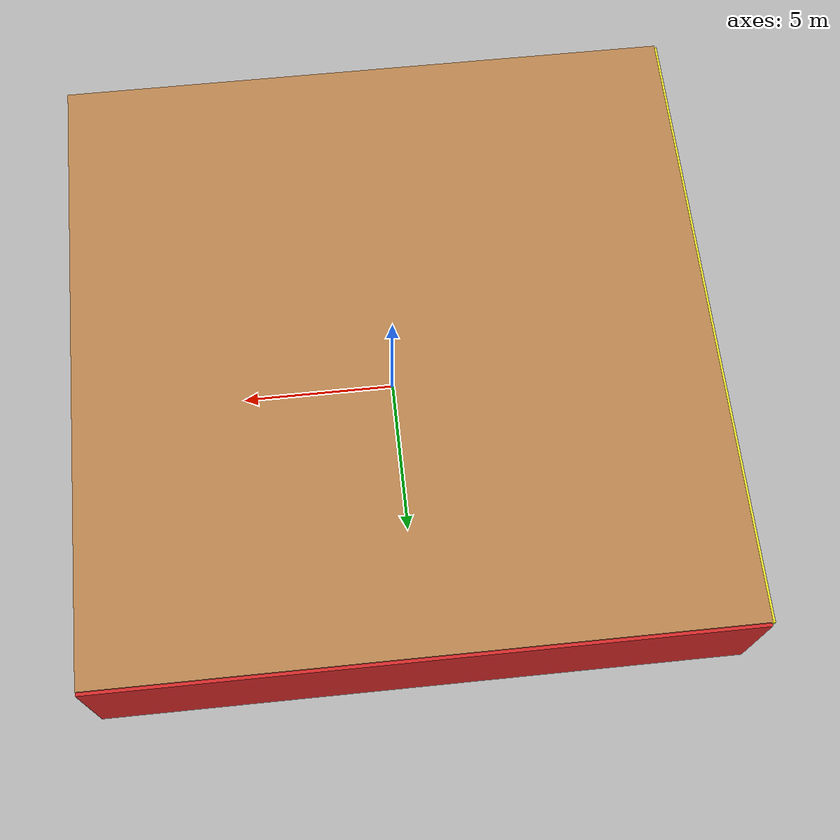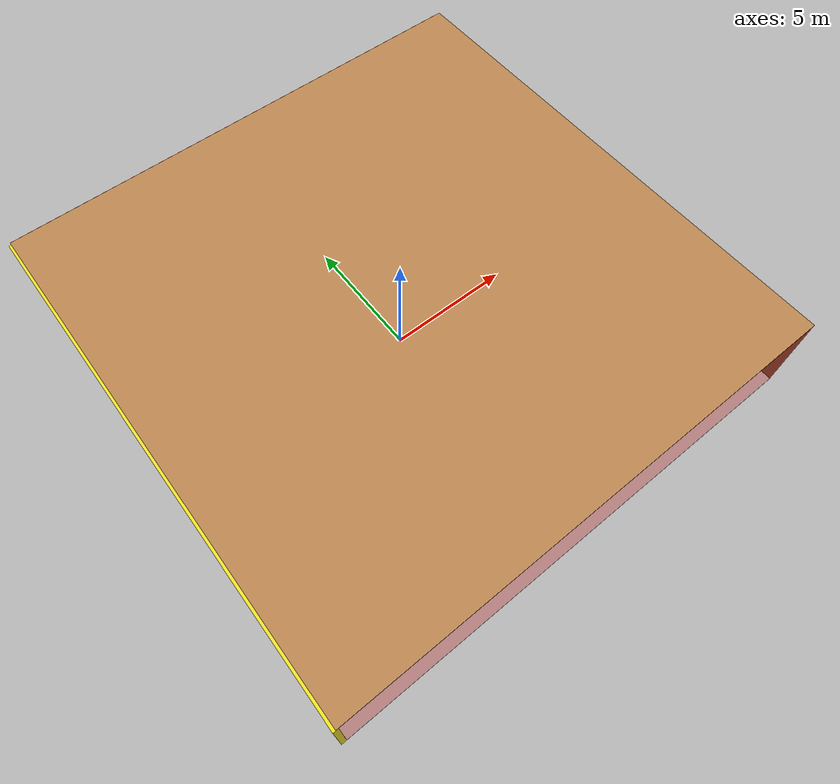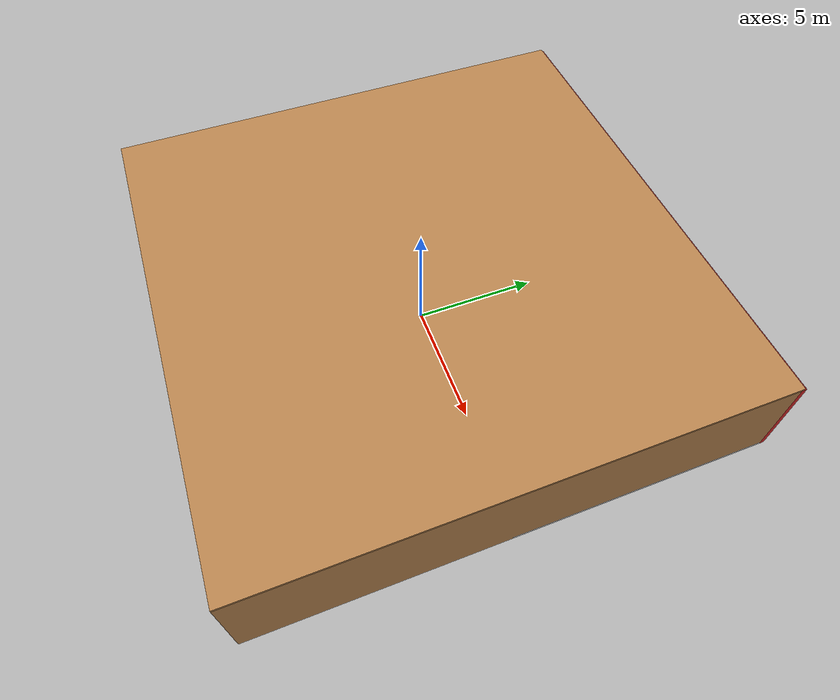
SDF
<sdf version="1.4">
 <world name="default">
  <physics type="ode">
   <max_step_size>0.001</max_step_size>
   <real_time_factor>1</real_time_factor>
   <real_time_update_rate>1000</real_time_update_rate>
   <gravity>0 0 -9.8</gravity>
  </physics>
  <scene><ambient>0.4 0.4 0.4 1</ambient><background>0.7 0.7 0.7 1</background><shadows>1</shadows></scene>
  <model name="Surrounding">
   <static>1</static>
   <link name="Ceiling">
    <collision name="Ceiling_Collision"><geometry><box><size>20 20 0.1</size></box></geometry></collision>
    <visual name="Ceiling_Visual">
     <geometry><box><size>20 20 0.1</size></box></geometry>
     <material>
      <script><uri>file://media/materials/scripts/gazebo.material</uri><name>Gazebo/WoodPallet</name></script>
     </material>
    </visual>
    <pose>0 0 4.05 0 0 0</pose>
   </link>
   <link name="Wall_South">
    <collision name="Wall_South_Collision">
     <geometry><box><size>20 0 4</size></box></geometry>
     <pose>0 0 2 0 -0 0</pose>
    </collision>
    <visual name="Wall_South_Visual">
     <pose>0 0 2 0 -0 0</pose>
     <geometry><box><size>20 0 4</size></box></geometry>
     <material>
      <script><uri>file://media/materials/scripts/gazebo.material</uri><name>Gazebo/RedTransparent</name></script>
     </material>
    </visual>
    <velocity_decay><linear>0</linear><angular>0</angular></velocity_decay>
    <pose>0 -10 0 0 -0 0</pose>
   </link>
   <link name="Wall_East">
    <collision name="Wall_21_Collision">
     <geometry><box><size>20 0 4</size></box></geometry>
     <pose>0 0 2 0 -0 0</pose>
    </collision>
    <visual name="Wall_21_Visual">
     <pose>0 0 2 0 -0 0</pose>
     <geometry><box><size>20 0 4</size></box></geometry>
     <material>
      <script><uri>file://media/materials/scripts/gazebo.material</uri><name>Gazebo/Wood</name></script>
     </material>
    </visual>
    <velocity_decay><linear>0</linear><angular>0</angular></velocity_decay>
    <pose>10 0 0 0 -0 1.5708</pose>
   </link>
   <link name="Wall_North">
    <collision name="Wall_22_Collision">
     <geometry><box><size>20 0.2 4</size></box></geometry>
     <pose>0 0 2 0 -0 0</pose>
    </collision>
    <visual name="Wall_22_Visual">
     <pose>0 0 2 0 -0 0</pose>
     <geometry><box><size>20 0.2 4</size></box></geometry>
     <material>
      <script><uri>file://media/materials/scripts/gazebo.material</uri><name>Gazebo/RedGlow</name></script>
     </material>
    </visual>
    <velocity_decay><linear>0</linear><angular>0</angular></velocity_decay>
    <pose>0 10 0 0 -0 0</pose>
   </link>
   <link name="Wall_West">
    <collision name="Wall_23_Collision">
     <geometry><box><size>20 0.2 4</size></box></geometry>
     <pose>0 0 2 0 -0 0</pose>
    </collision>
    <visual name="Wall_23_Visual">
     <pose>0 0 2 0 -0 0</pose>
     <geometry><box><size>20 0.2 4</size></box></geometry>
     <material>
      <script><uri>file://media/materials/scripts/gazebo.material</uri><name>Gazebo/YellowGlow</name></script>
     </material>
    </visual>
    <velocity_decay><linear>0</linear><angular>0</angular></velocity_decay>
    <pose>-10 0 0 0 0 -1.5708</pose>
   </link>
   <link name="Ground_link">
    <collision name="collision">
     <pose>0 0 .05 0 -0 0</pose>
     <geometry><box><size>20 20 0.1</size></box></geometry>
    </collision>
    <visual name="visual">
     <pose>0 0 .05 0 -0 0</pose>
     <geometry><box><size>20 20 0.1</size></box></geometry>
     <material>
      <script><uri>file://media/materials/scripts/gazebo.material</uri><name>Gazebo/White</name></script>
     </material>
    </visual>
   </link>
   <static>1</static>
  </model>
  <spherical_coordinates>
   <surface_model>EARTH_WGS84</surface_model>
   <latitude_deg>0</latitude_deg>
   <longitude_deg>0</longitude_deg>
   <elevation>0</elevation>
   <heading_deg>0</heading_deg>
  </spherical_coordinates>
  <light name="lightball_0" type="diffuse">
   <diffuse>0.8 0.8 0.8 1</diffuse>
   <specular>0.2 0.2 0.2 1</specular>
   <attenuation>
    <range>100</range>
    <constant>0.7</constant>
    <linear>0.01</linear>
    <quadratic>0.001</quadratic>
   </attenuation>
   <direction>-0.5 0.1 -0.9</direction>
   <pose>-9.11141005989 -4.23125618733 3.21211635576 0 0 0</pose>
  </light>
  <light name="lightball_1" type="diffuse">
   <diffuse>0.8 0.8 0.8 1</diffuse>
   <specular>0.2 0.2 0.2 1</specular>
   <attenuation>
    <range>100</range>
    <constant>0.7</constant>
    <linear>0.01</linear>
    <quadratic>0.001</quadratic>
   </attenuation>
   <direction>-0.5 0.1 -0.9</direction>
   <pose>-7.48381220615 -7.87655327766 2.43230035712 0 0 0</pose>
  </light>
  <light name="lightball_2" type="diffuse">
   <diffuse>0.8 0.8 0.8 1</diffuse>
   <specular>0.2 0.2 0.2 1</specular>
   <attenuation>
    <range>100</range>
    <constant>0.7</constant>
    <linear>0.01</linear>
    <quadratic>0.001</quadratic>
   </attenuation>
   <direction>-0.5 0.1 -0.9</direction>
   <pose>-5.37637290201 -3.71621335014 3.7062712079 0 0 0</pose>
  </light>
  <light name="lightball_3" type="diffuse">
   <diffuse>0.8 0.8 0.8 1</diffuse>
   <specular>0.2 0.2 0.2 1</specular>
   <attenuation>
    <range>100</range>
    <constant>0.7</constant>
    <linear>0.01</linear>
    <quadratic>0.001</quadratic>
   </attenuation>
   <direction>-0.5 0.1 -0.9</direction>
   <pose>3.3039462701 6.22383691322 1.70208636843 0 0 0</pose>
  </light>
  <light name="lightball_4" type="diffuse">
   <diffuse>0.8 0.8 0.8 1</diffuse>
   <specular>0.2 0.2 0.2 1</specular>
   <attenuation>
    <range>100</range>
    <constant>0.7</constant>
    <linear>0.01</linear>
    <quadratic>0.001</quadratic>
   </attenuation>
   <direction>-0.5 0.1 -0.9</direction>
   <pose>2.80265481415 0.82015529331 1.12831398206 0 0 0</pose>
  </light>
  <light name="lightball_5" type="diffuse">
   <diffuse>0.8 0.8 0.8 1</diffuse>
   <specular>0.2 0.2 0.2 1</specular>
   <attenuation>
    <range>100</range>
    <constant>0.7</constant>
    <linear>0.01</linear>
    <quadratic>0.001</quadratic>
   </attenuation>
   <direction>-0.5 0.1 -0.9</direction>
   <pose>-0.362155372744 9.39429673559 1.52420733576 0 0 0</pose>
  </light>
  <light name="lightball_6" type="diffuse">
   <diffuse>0.8 0.8 0.8 1</diffuse>
   <specular>0.2 0.2 0.2 1</specular>
   <attenuation>
    <range>100</range>
    <constant>0.7</constant>
    <linear>0.01</linear>
    <quadratic>0.001</quadratic>
   </attenuation>
   <direction>-0.5 0.1 -0.9</direction>
   <pose>-8.20729123546 -1.15979463201 2.24802685946 0 0 0</pose>
  </light>
  <light name="lightball_7" type="diffuse">
   <diffuse>0.8 0.8 0.8 1</diffuse>
   <specular>0.2 0.2 0.2 1</specular>
   <attenuation>
    <range>100</range>
    <constant>0.7</constant>
    <linear>0.01</linear>
    <quadratic>0.001</quadratic>
   </attenuation>
   <direction>-0.5 0.1 -0.9</direction>
   <pose>-6.24870260497 -5.5697603611 1.01122262926 0 0 0</pose>
  </light>
  <light name="lightball_8" type="diffuse">
   <diffuse>0.8 0.8 0.8 1</diffuse>
   <specular>0.2 0.2 0.2 1</specular>
   <attenuation>
    <range>100</range>
    <constant>0.7</constant>
    <linear>0.01</linear>
    <quadratic>0.001</quadratic>
   </attenuation>
   <direction>-0.5 0.1 -0.9</direction>
   <pose>-2.48884973667 -6.83818957232 1.7317837046 0 0 0</pose>
  </light>
  <light name="lightball_9" type="diffuse">
   <diffuse>0.8 0.8 0.8 1</diffuse>
   <specular>0.2 0.2 0.2 1</specular>
   <attenuation>
    <range>100</range>
    <constant>0.7</constant>
    <linear>0.01</linear>
    <quadratic>0.001</quadratic>
   </attenuation>
   <direction>-0.5 0.1 -0.9</direction>
   <pose>-2.74953021673 6.84354685368 1.78444649095 0 0 0</pose>
  </light>
  <light name="lightball_10" type="diffuse">
   <diffuse>0.8 0.8 0.8 1</diffuse>
   <specular>0.2 0.2 0.2 1</specular>
   <attenuation>
    <range>100</range>
    <constant>0.7</constant>
    <linear>0.01</linear>
    <quadratic>0.001</quadratic>
   </attenuation>
   <direction>-0.5 0.1 -0.9</direction>
   <pose>2.80840406988 -3.63234128999 0.799852732701 0 0 0</pose>
  </light>
  <light name="lightball_11" type="diffuse">
   <diffuse>0.8 0.8 0.8 1</diffuse>
   <specular>0.2 0.2 0.2 1</specular>
   <attenuation>
    <range>100</range>
    <constant>0.7</constant>
    <linear>0.01</linear>
    <quadratic>0.001</quadratic>
   </attenuation>
   <direction>-0.5 0.1 -0.9</direction>
   <pose>0.898231868496 7.37156944042 1.91134165724 0 0 0</pose>
  </light>
  <light name="lightball_12" type="diffuse">
   <diffuse>0.8 0.8 0.8 1</diffuse>
   <specular>0.2 0.2 0.2 1</specular>
   <attenuation>
    <range>100</range>
    <constant>0.7</constant>
    <linear>0.01</linear>
    <quadratic>0.001</quadratic>
   </attenuation>
   <direction>-0.5 0.1 -0.9</direction>
   <pose>-6.89568288995 -9.3237742768 1.62400253758 0 0 0</pose>
  </light>
  <light name="lightball_13" type="diffuse">
   <diffuse>0.8 0.8 0.8 1</diffuse>
   <specular>0.2 0.2 0.2 1</specular>
   <attenuation>
    <range>100</range>
    <constant>0.7</constant>
    <linear>0.01</linear>
    <quadratic>0.001</quadratic>
   </attenuation>
   <direction>-0.5 0.1 -0.9</direction>
   <pose>8.7874430376 7.77620096678 2.46450734949 0 0 0</pose>
  </light>
  <include><uri>model://cabinet</uri><pose>-7.77030456861 -0.570593591784 0 0 0 0.302365881174</pose></include>
  <include><uri>model://table</uri><pose>-4.66546677594 1.62202203582 0 0 0 2.02936852179</pose></include>
  <include>
   <uri>model://robocup_3Dsim_goal</uri>
   <pose>-1.19166637016 -0.320770113827 0 0 0 1.18850961708</pose>
  </include>
  <include><uri>model://cabinet</uri><pose>0.62338026415 -3.89995942611 0 0 0 3.03486177151</pose></include>
  <include><uri>model://cabinet</uri><pose>0.708043148608 6.84683974581 0 0 0 1.54740854675</pose></include>
  <include><uri>model://cabinet</uri><pose>3.76335328734 5.18830515504 0 0 0 2.62173648995</pose></include>
  <include><uri>model://cabinet</uri><pose>7.61081416135 -2.54894469557 0 0 0 1.83884342079</pose></include>
  <include>
   <uri>model://robocup_3Dsim_goal</uri>
   <pose>7.52388215978 2.00664659007 0 0 0 1.37220720092</pose>
  </include>
 </world>
</sdf>

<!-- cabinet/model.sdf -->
<sdf version="1.5">
  <model name="cabinet">
    <static>true</static>
    <link name="cabinet_bottom_plate">
      <inertial>
        <pose>0 0 -1 0 0 0</pose>
        <inertia>
          <ixx>2.050000</ixx>
          <ixy>0</ixy>
          <ixz>0</ixz>
          <iyy>2.050000</iyy>
          <iyz>0</iyz>
          <izz>2.050000</izz>
        </inertia>
        <mass>25.000000</mass>
      </inertial>
      <collision name="cabinet_bottom_plate_geom">
        <pose>0 0 0.010000 0 0 0</pose>
        <geometry>
          <box>
            <size>0.450000 0.450000 0.020000</size>
          </box>
        </geometry>
      </collision>
      <visual name="cabinet_bottom_plate_geom_visual">
        <pose>0 0 0.010000 0 0 0</pose>
        <geometry>
          <box>
            <size>0.450000 0.450000 0.020000</size>
          </box>
        </geometry>
        <material>
          <script>
            <uri>model://media/materials/scripts/gazebo.material</uri>
            <name>Gazebo/Wood</name>
          </script>
        </material>
      </visual>
      <collision name="cabinet_bottom_plate_geom_cabinet_back_plate">
        <pose>0.235000 0 0.510000 0 0 0</pose>
        <geometry>
          <box>
            <size>0.020000 0.450000 1.020000</size>
          </box>
        </geometry>
      </collision>
      <visual name="cabinet_bottom_plate_geom_cabinet_back_plate_visual">
        <pose>0.235000 0 0.510000 0 0 0</pose>
        <geometry>
          <box>
            <size>0.020000 0.450000 1.020000</size>
          </box>
        </geometry>
        <material>
          <script>
            <uri>model://media/materials/scripts/gazebo.material</uri>
            <name>Gazebo/Wood</name>
          </script>
        </material>
      </visual>
      <collision name="cabinet_bottom_plate_geom_cabinet_left_plate">
        <pose>0 0.235000 0.510000 0 0 0</pose>
        <geometry>
          <box>
            <size>0.450000 0.020000 1.020000</size>
          </box>
        </geometry>
      </collision>
      <visual name="cabinet_bottom_plate_geom_cabinet_left_plate_visual">
        <pose>0 0.235000 0.510000 0 0 0</pose>
        <geometry>
          <box>
            <size>0.450000 0.020000 1.020000</size>
          </box>
        </geometry>
        <material>
          <script>
            <uri>model://media/materials/scripts/gazebo.material</uri>
            <name>Gazebo/Wood</name>
          </script>
        </material>
      </visual>
      <collision name="cabinet_bottom_plate_geom_cabinet_middle_plate">
        <pose>0 0 0.510000 0 0 0</pose>
        <geometry>
          <box>
            <size>0.450000 0.450000 0.020000</size>
          </box>
        </geometry>
      </collision>
      <visual name="cabinet_bottom_plate_geom_cabinet_middle_plate_visual">
        <pose>0 0 0.510000 0 0 0</pose>
        <geometry>
          <box>
            <size>0.450000 0.450000 0.020000</size>
          </box>
        </geometry>
        <material>
          <script>
            <uri>model://media/materials/scripts/gazebo.material</uri>
            <name>Gazebo/Wood</name>
          </script>
        </material>
      </visual>
      <collision name="cabinet_bottom_plate_geom_cabinet_right_plate">
        <pose>0 -0.235000 0.510000 0 0 0</pose>
        <geometry>
          <box>
            <size>0.450000 0.020000 1.020000</size>
          </box>
        </geometry>
      </collision>
      <visual name="cabinet_bottom_plate_geom_cabinet_right_plate_visual">
        <pose>0 -0.235000 0.510000 0 0 0</pose>
        <geometry>
          <box>
            <size>0.450000 0.020000 1.020000</size>
          </box>
        </geometry>
        <material>
          <script>
            <uri>model://media/materials/scripts/gazebo.material</uri>
            <name>Gazebo/Wood</name>
          </script>
        </material>
      </visual>
      <collision name="cabinet_bottom_plate_geom_cabinet_top_plate">
        <pose>0 0 1.010000 0 0 0</pose>
        <geometry>
          <box>
            <size>0.450000 0.450000 0.020000</size>
          </box>
        </geometry>
      </collision>
      <visual name="cabinet_bottom_plate_geom_cabinet_top_plate_visual">
        <pose>0 0 1.010000 0 0 0</pose>
        <geometry>
          <box>
            <size>0.450000 0.450000 0.020000</size>
          </box>
        </geometry>
        <material>
          <script>
            <uri>model://media/materials/scripts/gazebo.material</uri>
            <name>Gazebo/Wood</name>
          </script>
        </material>
      </visual>
    </link>
  </model>
</sdf>

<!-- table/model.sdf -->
<sdf version="1.5">
  <model name="table">
    <static>true</static>
    <link name="link">
      <collision name="surface">
        <pose>0 0 1.0 0 0 0</pose>
        <geometry>
          <box>
            <size>1.5 0.8 0.03</size>
          </box>
        </geometry>
        <surface>
          <friction>
            <ode>
              <mu>0.6</mu>
              <mu2>0.6</mu2>
            </ode>
          </friction>
        </surface>
      </collision>
      <visual name="visual1">
        <pose>0 0 1.0 0 0 0</pose>
        <geometry>
          <box>
            <size>1.5 0.8 0.03</size>
          </box>
        </geometry>
        <material>
          <script>
            <uri>model://media/materials/scripts/gazebo.material</uri>
            <name>Gazebo/Wood</name>
          </script>
        </material>
      </visual>
      <collision name="front_left_leg">
        <pose>0.68 0.38 0.5 0 0 0</pose>
        <geometry>
          <cylinder>
            <radius>0.02</radius>
            <length>1.0</length>
          </cylinder>
        </geometry>
      </collision>
      <visual name="front_left_leg">
        <pose>0.68 0.38 0.5 0 0 0</pose>
        <geometry>
          <cylinder>
            <radius>0.02</radius>
            <length>1.0</length>
          </cylinder>
        </geometry>
        <material>
          <script>
            <uri>model://media/materials/scripts/gazebo.material</uri>
            <name>Gazebo/Grey</name>
          </script>
        </material>
      </visual>
      <collision name="front_right_leg">
        <pose>0.68 -0.38 0.5 0 0 0</pose>
        <geometry>
          <cylinder>
            <radius>0.02</radius>
            <length>1.0</length>
          </cylinder>
        </geometry>
      </collision>
      <visual name="front_right_leg">
        <pose>0.68 -0.38 0.5 0 0 0</pose>
        <geometry>
          <cylinder>
            <radius>0.02</radius>
            <length>1.0</length>
          </cylinder>
        </geometry>
        <material>
          <script>
            <uri>model://media/materials/scripts/gazebo.material</uri>
            <name>Gazebo/Grey</name>
          </script>
        </material>
      </visual>
      <collision name="back_right_leg">
        <pose>-0.68 -0.38 0.5 0 0 0</pose>
        <geometry>
          <cylinder>
            <radius>0.02</radius>
            <length>1.0</length>
          </cylinder>
        </geometry>
      </collision>
      <visual name="back_right_leg">
        <pose>-0.68 -0.38 0.5 0 0 0</pose>
        <geometry>
          <cylinder>
            <radius>0.02</radius>
            <length>1.0</length>
          </cylinder>
        </geometry>
        <material>
          <script>
            <uri>model://media/materials/scripts/gazebo.material</uri>
            <name>Gazebo/Grey</name>
          </script>
        </material>
      </visual>
      <collision name="back_left_leg">
        <pose>-0.68 0.38 0.5 0 0 0</pose>
        <geometry>
          <cylinder>
            <radius>0.02</radius>
            <length>1.0</length>
          </cylinder>
        </geometry>
      </collision>
      <visual name="back_left_leg">
        <pose>-0.68 0.38 0.5 0 0 0</pose>
        <geometry>
          <cylinder>
            <radius>0.02</radius>
            <length>1.0</length>
          </cylinder>
        </geometry>
        <material>
          <script>
            <uri>model://media/materials/scripts/gazebo.material</uri>
            <name>Gazebo/Grey</name>
          </script>
        </material>
      </visual>
    </link>
  </model>
</sdf>

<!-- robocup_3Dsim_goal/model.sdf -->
<sdf version="1.5">
  <model name="robocup_3d_goal">
    <static>true</static>
    <link name="left_post">
      <pose>0 1.05 0.45 0 0 0</pose>
      <collision name="collision">
        <geometry>
          <cylinder>
            <radius>0.05</radius>
            <length>0.9</length>
          </cylinder>
        </geometry>
      </collision>
      <visual name="visual">
        <geometry>
          <cylinder>
            <radius>0.05</radius>
            <length>0.9</length>
          </cylinder>
        </geometry>
        <material>
          <script>
            <uri>file://media/materials/scripts/gazebo.material</uri>
            <name>Gazebo/ZincYellow</name>
          </script>
        </material>
      </visual>
    </link>
    <link name="left_support_horiz_lower">
      <pose>0.30 1.05 0.01 0 0 0</pose>
      <collision name="collision">
        <geometry>
          <box>
            <size>0.50 0.02 0.02</size>
          </box>
        </geometry>
      </collision>
      <visual name="visual">
        <geometry>
          <box>
            <size>0.50 0.02 0.02</size>
          </box>
        </geometry>
        <material>
          <script>
            <uri>file://media/materials/scripts/gazebo.material</uri>
            <name>Gazebo/White</name>
          </script>
        </material>
      </visual>
    </link>
    <link name="left_support_horiz_upper">
      <pose>0.30 1.05 0.79 0 0 0</pose>
      <collision name="collision">
        <geometry>
          <box>
            <size>0.50 0.02 0.02</size>
          </box>
        </geometry>
      </collision>
      <visual name="visual">
        <geometry>
          <box>
            <size>0.50 0.02 0.02</size>
          </box>
        </geometry>
        <material>
          <script>
            <uri>file://media/materials/scripts/gazebo.material</uri>
            <name>Gazebo/White</name>
          </script>
        </material>
      </visual>
    </link>
    <link name="left_support_vertical">
      <pose>0.56 1.05 0.4 0 1.5708 0</pose>
      <collision name="collision">
        <geometry>
          <box>
            <size>0.80 0.02 0.02</size>
          </box>
        </geometry>
      </collision>
      <visual name="visual">
        <geometry>
          <box>
            <size>0.80 0.02 0.02</size>
          </box>
        </geometry>
        <material>
          <script>
            <uri>file://media/materials/scripts/gazebo.material</uri>
            <name>Gazebo/White</name>
          </script>
        </material>
      </visual>
    </link>
    <link name="right_support_horiz_lower">
      <pose>0.30 -1.05 0.01 0 0 0</pose>
      <collision name="collision">
        <geometry>
          <box>
            <size>0.50 0.02 0.02</size>
          </box>
        </geometry>
      </collision>
      <visual name="visual">
        <geometry>
          <box>
            <size>0.50 0.02 0.02</size>
          </box>
        </geometry>
        <material>
          <script>
            <uri>file://media/materials/scripts/gazebo.material</uri>
            <name>Gazebo/White</name>
          </script>
        </material>
      </visual>
    </link>
    <link name="right_support_horiz_upper">
      <pose>0.30 -1.05 0.79 0 0 0</pose>
      <collision name="collision">
        <geometry>
          <box>
            <size>0.50 0.02 0.02</size>
          </box>
        </geometry>
      </collision>
      <visual name="visual">
        <geometry>
          <box>
            <size>0.50 0.02 0.02</size>
          </box>
        </geometry>
        <material>
          <script>
            <uri>file://media/materials/scripts/gazebo.material</uri>
            <name>Gazebo/White</name>
          </script>
        </material>
      </visual>
    </link>
    <link name="right_support_vertical">
      <pose>0.56 -1.05 0.4 0 1.5708 0</pose>
      <collision name="collision">
        <geometry>
          <box>
            <size>0.80 0.02 0.02</size>
          </box>
        </geometry>
      </collision>
      <visual name="visual">
        <geometry>
          <box>
            <size>0.80 0.02 0.02</size>
          </box>
        </geometry>
        <material>
          <script>
            <uri>file://media/materials/scripts/gazebo.material</uri>
            <name>Gazebo/White</name>
          </script>
        </material>
      </visual>
    </link>
    <link name="center_support_horiz_lower">
      <pose>0.56 0 0.01 0 1.5708 0</pose>
      <collision name="collision">
        <geometry>
          <box>
            <size>0.02 2.08 0.02</size>
          </box>
        </geometry>
      </collision>
      <visual name="visual">
        <geometry>
          <box>
            <size>0.02 2.08 0.02</size>
          </box>
        </geometry>
        <material>
          <script>
            <uri>file://media/materials/scripts/gazebo.material</uri>
            <name>Gazebo/White</name>
          </script>
        </material>
      </visual>
    </link>
    <link name="center_support_horiz_upper">
      <pose>0.56 0 0.79 0 1.5708 0</pose>
      <collision name="collision">
        <geometry>
          <box>
            <size>0.02 2.08 0.02</size>
          </box>
        </geometry>
      </collision>
      <visual name="visual">
        <geometry>
          <box>
            <size>0.02 2.08 0.02</size>
          </box>
        </geometry>
        <material>
          <script>
            <uri>file://media/materials/scripts/gazebo.material</uri>
            <name>Gazebo/White</name>
          </script>
        </material>
      </visual>
    </link>
    <link name="right_post">
      <pose>0 -1.05 0.45 0 0 0</pose>
      <collision name="collision">
        <geometry>
          <cylinder>
            <radius>0.05</radius>
            <length>0.9</length>
          </cylinder>
        </geometry>
      </collision>
      <visual name="visual">
        <geometry>
          <cylinder>
            <radius>0.05</radius>
            <length>0.9</length>
          </cylinder>
        </geometry>
        <material>
          <script>
            <uri>file://media/materials/scripts/gazebo.material</uri>
            <name>Gazebo/ZincYellow</name>
          </script>
        </material>
      </visual>
    </link>
    <link name="crossbar">
      <pose>0 0 0.85 1.57 1.57 0</pose>
      <collision name="collision">
        <geometry>
          <cylinder>
            <radius>0.05</radius>
            <length>2.0</length>
          </cylinder>
        </geometry>
      </collision>
      <visual name="visual">
        <geometry>
          <cylinder>
            <radius>0.05</radius>
            <length>2.0</length>
          </cylinder>
        </geometry>
        <material>
          <script>
            <uri>file://media/materials/scripts/gazebo.material</uri>
            <name>Gazebo/ZincYellow</name>
          </script>
        </material>
      </visual>
    </link>
    <link name="center_net">
      <pose>0.56 0 0.40 0 0 0</pose>
      <collision name="collision">
        <geometry>
          <box>
            <size>0.01 2.1 0.80</size>
          </box>
        </geometry>
      </collision>
      <visual name="visual">
        <geometry>
          <box>
            <size>0.01 2.1 0.80</size>
          </box>
        </geometry>
        <material>
          <script>
            <uri>model://../model_source/models/robocup09_spl_field/materials/scripts/</uri>
            <uri>model://../model_source/models/robocup09_spl_field/materials/textures/</uri>
            <name>RoboCup/Net</name>
          </script>
        </material>
      </visual>
    </link>
    <link name="left_net">
      <pose>0.30 1.05 0.40 0 0 0</pose>
      <collision name="collision">
        <geometry>
          <box>
            <size>0.50 0.01 0.76</size>
          </box>
        </geometry>
      </collision>
      <visual name="visual">
        <geometry>
          <box>
            <size>0.50 0.01 0.76</size>
          </box>
        </geometry>
        <material>
          <script>
            <uri>model://../model_source/models/robocup09_spl_field/materials/scripts/</uri>
            <uri>model://../model_source/models/robocup09_spl_field/materials/textures/</uri>
            <name>RoboCup/Net</name>
          </script>
        </material>
      </visual>
    </link>
    <link name="right_net">
      <pose>0.30 -1.05 0.40 0 0 0</pose>
      <collision name="collision">
        <geometry>
          <box>
            <size>0.50 0.01 0.76</size>
          </box>
        </geometry>
      </collision>
      <visual name="visual">
        <geometry>
          <box>
            <size>0.50 0.01 0.76</size>
          </box>
        </geometry>
        <material>
          <script>
            <uri>model://../model_source/models/robocup09_spl_field/materials/scripts/</uri>
            <uri>model://../model_source/models/robocup09_spl_field/materials/textures/</uri>
            <name>RoboCup/Net</name>
          </script>
        </material>
      </visual>
    </link>
  </model>
</sdf>
